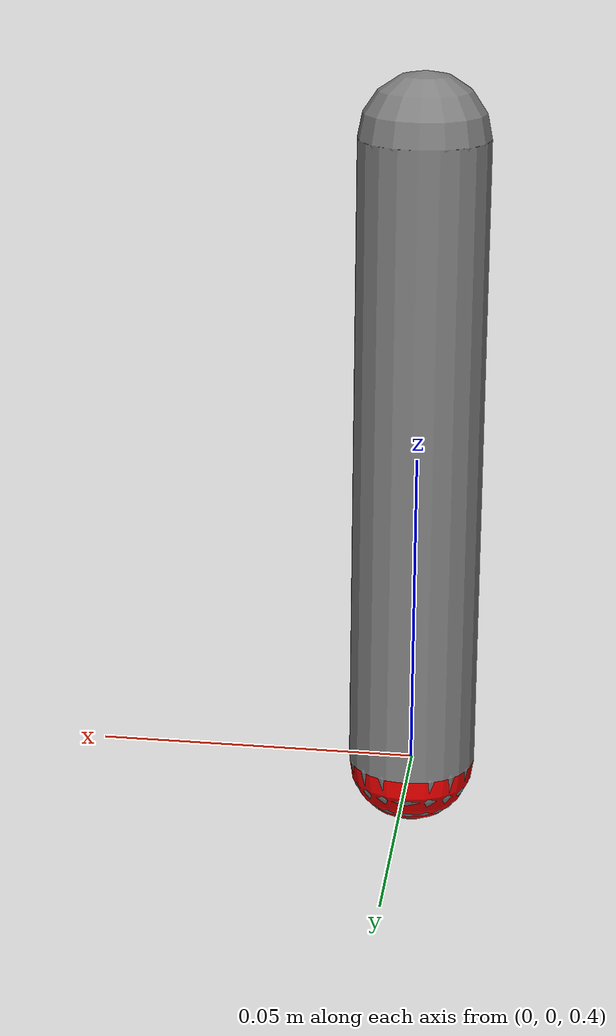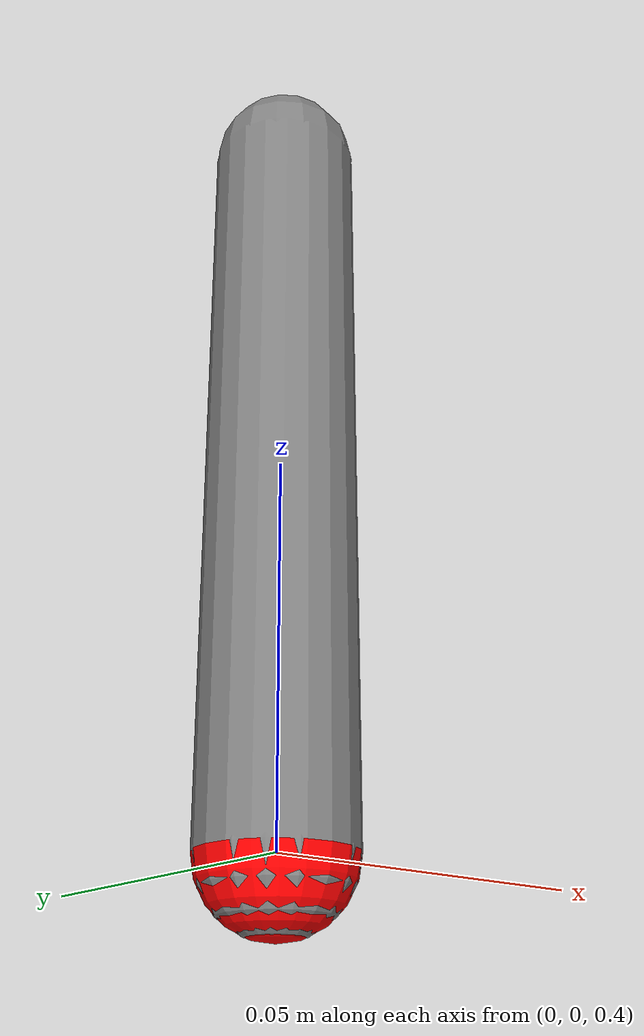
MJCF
<mujoco model="pendulum">
    <option gravity="0 0 -9.81" integrator="RK4"/>

    <default>
        <joint damping="0.0011953" frictionloss="0.00496781"/>
    </default>

    <worldbody>
        <geom name="floor" type="plane" size="1 1 0.1" rgba=".9 .9 .9 1"/>

        <body name="pendulum_body" pos="0 0 0.5">
            <joint name="hinge" type="hinge" axis="0 1 0" pos="0 0 0"/>
            <geom name="rod" type="capsule" fromto="0 0 0 0 0 -0.1" size="0.01" rgba="0.5 0.5 0.5 1"/>
            <geom name="mass" type="sphere" pos="0 0 -0.1" size="0.01" mass="0.16492051" rgba="1 0 0 1"/>
        </body>
    </worldbody>

    <actuator>
        <motor name="torque" joint="hinge" gear="1" ctrllimited="true" ctrlrange="-1 1"/>
    </actuator>
</mujoco>
